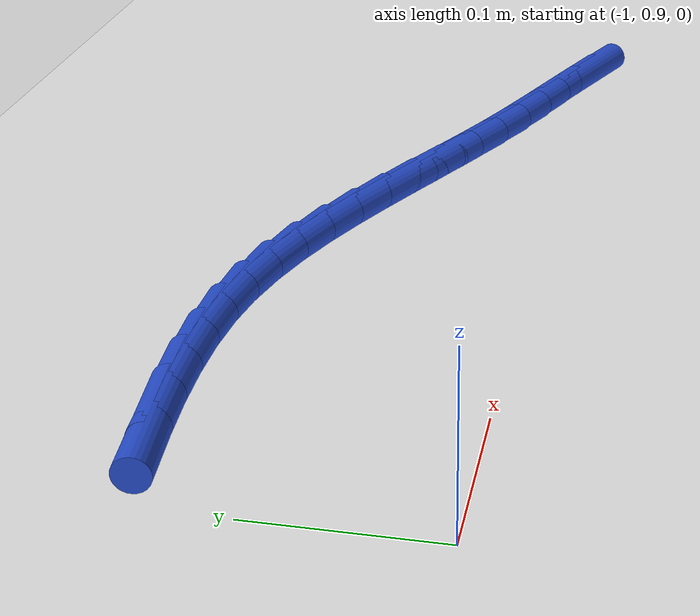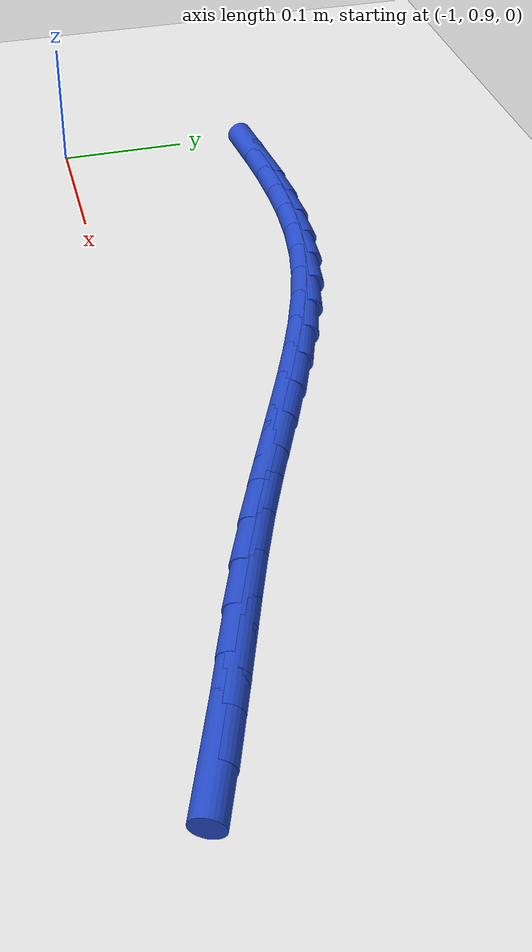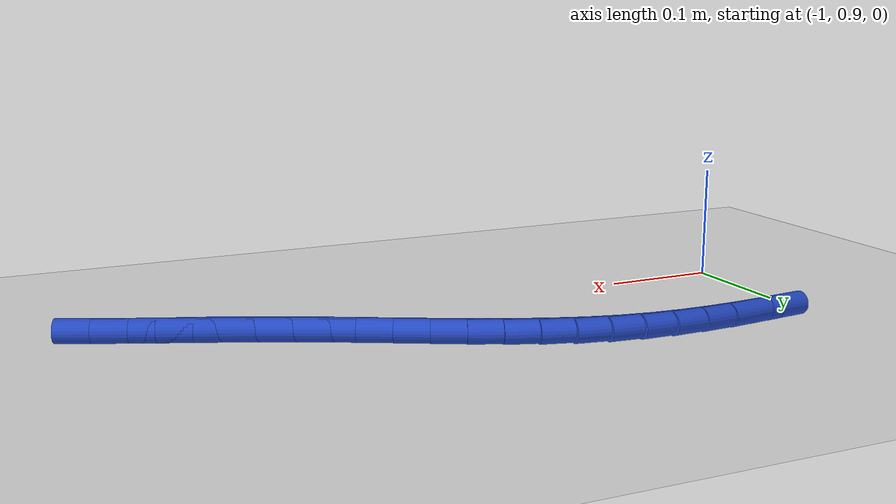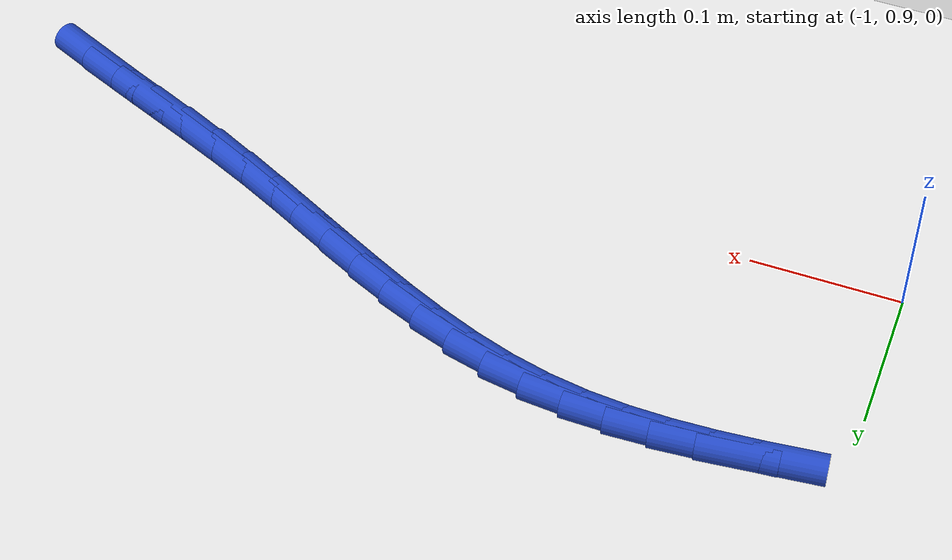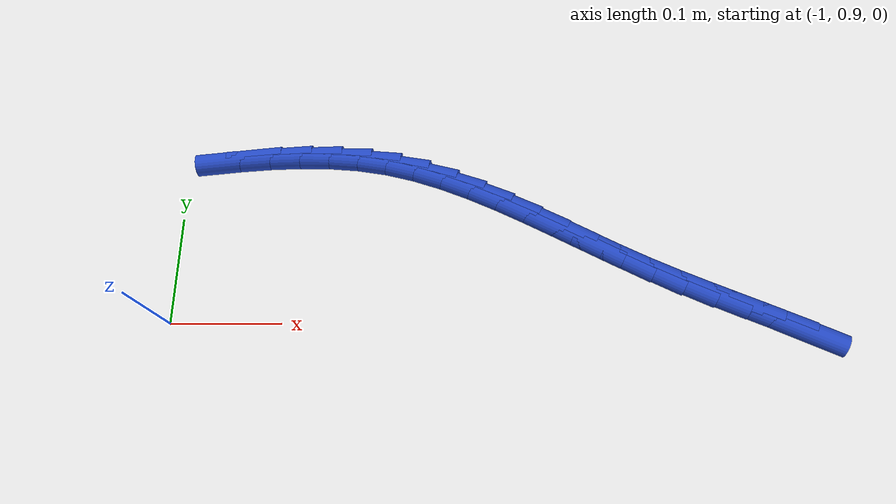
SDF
<sdf version="1.6">
 <world name="default">
  <model name="ground_plane">
   <static>1</static>
   <link name="link">
    <collision name="collision">
     <geometry><plane><normal>0 0 1</normal><size>100 100</size></plane></geometry>
     <surface><friction><ode><mu>100</mu><mu2>50</mu2></ode></friction></surface>
    </collision>
    <visual name="visual">
     <cast_shadows>0</cast_shadows>
     <geometry><plane><normal>0 0 1</normal><size>100 100</size></plane></geometry>
     <material>
      <script><uri>file://media/materials/scripts/gazebo.material</uri><name>Gazebo/WhiteGlow</name></script>
     </material>
    </visual>
   </link>
  </model>
  <model name="line">
   <link name="link_36">
    <pose>-0.4381014553326658 0.8921651465809661 0.01 0 1.57 -0.4061795346657899</pose>
    <collision name="collision">
     <geometry><cylinder><radius>0.01</radius><length>0.08</length></cylinder></geometry>
    </collision>
    <visual name="visual">
     <material>
      <script><name>Gazebo/Blue</name><uri>file://media/materials/scripts/gazebo.material</uri></script>
     </material>
     <geometry><cylinder><radius>0.01</radius><length>0.08</length></cylinder></geometry>
    </visual>
   </link>
   <link name="link_37">
    <pose>-0.4648398862775566 0.9036652533412662 0.01 0 1.57 -0.3898601877596033</pose>
    <collision name="collision">
     <geometry><cylinder><radius>0.01</radius><length>0.08</length></cylinder></geometry>
    </collision>
    <visual name="visual">
     <material>
      <script><name>Gazebo/Blue</name><uri>file://media/materials/scripts/gazebo.material</uri></script>
     </material>
     <geometry><cylinder><radius>0.01</radius><length>0.08</length></cylinder></geometry>
    </visual>
   </link>
   <link name="link_38">
    <pose>-0.49206413976666136 0.9148514673879994 0.01 0 1.57 -0.3870784998192405</pose>
    <collision name="collision">
     <geometry><cylinder><radius>0.01</radius><length>0.08</length></cylinder></geometry>
    </collision>
    <visual name="visual">
     <material>
      <script><name>Gazebo/Blue</name><uri>file://media/materials/scripts/gazebo.material</uri></script>
     </material>
     <geometry><cylinder><radius>0.01</radius><length>0.08</length></cylinder></geometry>
    </visual>
   </link>
   <link name="link_39">
    <pose>-0.5195219869142449 0.9260444903778096 0.01 0 1.57 -0.397506068324324</pose>
    <collision name="collision">
     <geometry><cylinder><radius>0.01</radius><length>0.08</length></cylinder></geometry>
    </collision>
    <visual name="visual">
     <material>
      <script><name>Gazebo/Blue</name><uri>file://media/materials/scripts/gazebo.material</uri></script>
     </material>
     <geometry><cylinder><radius>0.01</radius><length>0.08</length></cylinder></geometry>
    </visual>
   </link>
   <link name="link_40">
    <pose>-0.5469611988345714 0.9375650239673404 0.01 0 1.57 -0.4209592803566281</pose>
    <collision name="collision">
     <geometry><cylinder><radius>0.01</radius><length>0.08</length></cylinder></geometry>
    </collision>
    <visual name="visual">
     <material>
      <script><name>Gazebo/Blue</name><uri>file://media/materials/scripts/gazebo.material</uri></script>
     </material>
     <geometry><cylinder><radius>0.01</radius><length>0.08</length></cylinder></geometry>
    </visual>
   </link>
   <link name="link_41">
    <pose>-0.574131566904398 0.9497298396941195 0.01 0 1.57 -0.44840053376011474</pose>
    <collision name="collision">
     <geometry><cylinder><radius>0.01</radius><length>0.08</length></cylinder></geometry>
    </collision>
    <visual name="visual">
     <material>
      <script><name>Gazebo/Blue</name><uri>file://media/materials/scripts/gazebo.material</uri></script>
     </material>
     <geometry><cylinder><radius>0.01</radius><length>0.08</length></cylinder></geometry>
    </visual>
   </link>
   <link name="link_42">
    <pose>-0.6009083137038936 0.9626117014125278 0.01 0 1.57 -0.46549211728601964</pose>
    <collision name="collision">
     <geometry><cylinder><radius>0.01</radius><length>0.08</length></cylinder></geometry>
    </collision>
    <visual name="visual">
     <material>
      <script><name>Gazebo/Blue</name><uri>file://media/materials/scripts/gazebo.material</uri></script>
     </material>
     <geometry><cylinder><radius>0.01</radius><length>0.08</length></cylinder></geometry>
    </visual>
   </link>
   <link name="link_43">
    <pose>-0.6273635436000568 0.9759003688491711 0.01 0 1.57 -0.4709485560047609</pose>
    <collision name="collision">
     <geometry><cylinder><radius>0.01</radius><length>0.08</length></cylinder></geometry>
    </collision>
    <visual name="visual">
     <material>
      <script><name>Gazebo/Blue</name><uri>file://media/materials/scripts/gazebo.material</uri></script>
     </material>
     <geometry><cylinder><radius>0.01</radius><length>0.08</length></cylinder></geometry>
    </visual>
   </link>
   <link name="link_44">
    <pose>-0.6535865882536065 0.9892520886022375 0.01 0 1.57 -0.46459571442858605</pose>
    <collision name="collision">
     <geometry><cylinder><radius>0.01</radius><length>0.08</length></cylinder></geometry>
    </collision>
    <visual name="visual">
     <material>
      <script><name>Gazebo/Blue</name><uri>file://media/materials/scripts/gazebo.material</uri></script>
     </material>
     <geometry><cylinder><radius>0.01</radius><length>0.08</length></cylinder></geometry>
    </visual>
   </link>
   <link name="link_45">
    <pose>-0.6796667793252615 1.002323107269916 0.01 0 1.57 -0.446075115598375</pose>
    <collision name="collision">
     <geometry><cylinder><radius>0.01</radius><length>0.08</length></cylinder></geometry>
    </collision>
    <visual name="visual">
     <material>
      <script><name>Gazebo/Blue</name><uri>file://media/materials/scripts/gazebo.material</uri></script>
     </material>
     <geometry><cylinder><radius>0.01</radius><length>0.08</length></cylinder></geometry>
    </visual>
   </link>
   <link name="link_46">
    <pose>-0.7056934484757403 1.0147696714503944 0.01 0 1.57 -0.4148561046462073</pose>
    <collision name="collision">
     <geometry><cylinder><radius>0.01</radius><length>0.08</length></cylinder></geometry>
    </collision>
    <visual name="visual">
     <material>
      <script><name>Gazebo/Blue</name><uri>file://media/materials/scripts/gazebo.material</uri></script>
     </material>
     <geometry><cylinder><radius>0.01</radius><length>0.08</length></cylinder></geometry>
    </visual>
   </link>
   <link name="link_47">
    <pose>-0.7317559273657617 1.026248027741861 0.01 0 1.57 -0.37030473141281095</pose>
    <collision name="collision">
     <geometry><cylinder><radius>0.01</radius><length>0.08</length></cylinder></geometry>
    </collision>
    <visual name="visual">
     <material>
      <script><name>Gazebo/Blue</name><uri>file://media/materials/scripts/gazebo.material</uri></script>
     </material>
     <geometry><cylinder><radius>0.01</radius><length>0.08</length></cylinder></geometry>
    </visual>
   </link>
   <link name="link_48">
    <pose>-0.7579435476560444 1.0364144227425043 0.01 0 1.57 -0.3118320176358554</pose>
    <collision name="collision">
     <geometry><cylinder><radius>0.01</radius><length>0.08</length></cylinder></geometry>
    </collision>
    <visual name="visual">
     <material>
      <script><name>Gazebo/Blue</name><uri>file://media/materials/scripts/gazebo.material</uri></script>
     </material>
     <geometry><cylinder><radius>0.01</radius><length>0.08</length></cylinder></geometry>
    </visual>
   </link>
   <link name="link_49">
    <pose>-0.7843456410073073 1.044925103050513 0.01 0 1.57 -0.23914601775955457</pose>
    <collision name="collision">
     <geometry><cylinder><radius>0.01</radius><length>0.08</length></cylinder></geometry>
    </collision>
    <visual name="visual">
     <material>
      <script><name>Gazebo/Blue</name><uri>file://media/materials/scripts/gazebo.material</uri></script>
     </material>
     <geometry><cylinder><radius>0.01</radius><length>0.08</length></cylinder></geometry>
    </visual>
   </link>
   <link name="link_50">
    <pose>-0.8110515390802692 1.0514363152640749 0.01 0 1.57 -0.15546103807533657</pose>
    <collision name="collision">
     <geometry><cylinder><radius>0.01</radius><length>0.08</length></cylinder></geometry>
    </collision>
    <visual name="visual">
     <material>
      <script><name>Gazebo/Blue</name><uri>file://media/materials/scripts/gazebo.material</uri></script>
     </material>
     <geometry><cylinder><radius>0.01</radius><length>0.08</length></cylinder></geometry>
    </visual>
   </link>
   <link name="link_51">
    <pose>-0.8381366836914228 1.0556812525932815 0.01 0 1.57 -0.0779235943004407</pose>
    <collision name="collision">
     <geometry><cylinder><radius>0.01</radius><length>0.08</length></cylinder></geometry>
    </collision>
    <visual name="visual">
     <material>
      <script><name>Gazebo/Blue</name><uri>file://media/materials/scripts/gazebo.material</uri></script>
     </material>
     <geometry><cylinder><radius>0.01</radius><length>0.08</length></cylinder></geometry>
    </visual>
   </link>
   <link name="link_52">
    <pose>-0.8655984617536748 1.0578255148523399 0.01 0 1.57 -0.012949238469325115</pose>
    <collision name="collision">
     <geometry><cylinder><radius>0.01</radius><length>0.08</length></cylinder></geometry>
    </collision>
    <visual name="visual">
     <material>
      <script><name>Gazebo/Blue</name><uri>file://media/materials/scripts/gazebo.material</uri></script>
     </material>
     <geometry><cylinder><radius>0.01</radius><length>0.08</length></cylinder></geometry>
    </visual>
   </link>
   <link name="link_53">
    <pose>-0.893407014901608 1.058185634567389 0.01 0 1.57 0.039350918258431636</pose>
    <collision name="collision">
     <geometry><cylinder><radius>0.01</radius><length>0.08</length></cylinder></geometry>
    </collision>
    <visual name="visual">
     <material>
      <script><name>Gazebo/Blue</name><uri>file://media/materials/scripts/gazebo.material</uri></script>
     </material>
     <geometry><cylinder><radius>0.01</radius><length>0.08</length></cylinder></geometry>
    </visual>
   </link>
   <link name="link_54">
    <pose>-0.9215324564790256 1.0570783009891298 0.01 0 1.57 0.07930895614756005</pose>
    <collision name="collision">
     <geometry><cylinder><radius>0.01</radius><length>0.08</length></cylinder></geometry>
    </collision>
    <visual name="visual">
     <material>
      <script><name>Gazebo/Blue</name><uri>file://media/materials/scripts/gazebo.material</uri></script>
     </material>
     <geometry><cylinder><radius>0.01</radius><length>0.08</length></cylinder></geometry>
    </visual>
   </link>
   <link name="link_55">
    <pose>-0.9499448998297297 1.0548202033682617 0.01 0 1.57 0.10744027245277923</pose>
    <collision name="collision">
     <geometry><cylinder><radius>0.01</radius><length>0.08</length></cylinder></geometry>
    </collision>
    <visual name="visual">
     <material>
      <script><name>Gazebo/Blue</name><uri>file://media/materials/scripts/gazebo.material</uri></script>
     </material>
     <geometry><cylinder><radius>0.01</radius><length>0.08</length></cylinder></geometry>
    </visual>
   </link>
  </model>
 </world>
</sdf>
